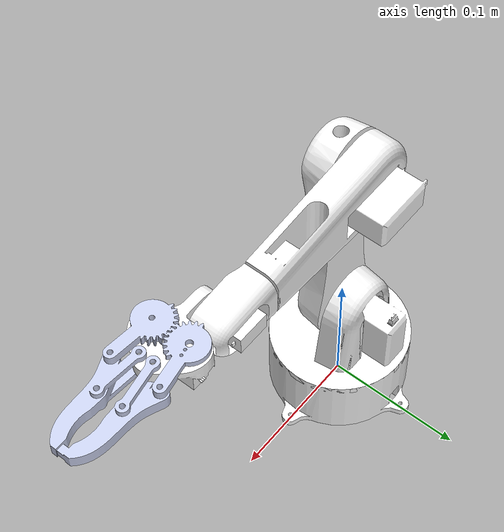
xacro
<?xml version="1.0"?>
<robot xmlns:xacro="http://www.ros.org/wiki/xacro" name="astra_arm_urdf">
    <xacro:arg name="initial_positions_file" default="initial_positions.yaml" />

    <!-- Import astra_arm_urdf urdf file -->
    <xacro:include filename="$(find astra_arm_urdf)/urdf/astra_arm_urdf.urdf" />

    <!-- Import control_xacro -->
    <xacro:include filename="astra_arm_urdf.ros2_control.xacro" />

    <xacro:astra_arm_urdf_ros2_control name="FakeSystem" initial_positions_file="$(arg initial_positions_file)"/>

</robot>

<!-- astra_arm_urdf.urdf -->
<robot
  name="astra_arm_urdf">
  <link
    name="base_link">
    <inertial>
      <origin
        xyz="-3.08444532333696E-05 0.00118382469675537 0.0391133064626048"
        rpy="0 0 0" />
      <mass
        value="0.21714940667968" />
      <inertia
        ixx="0.000199893756705658"
        ixy="9.78241783510233E-08"
        ixz="-7.79432582355636E-08"
        iyy="0.000197792028989822"
        iyz="-6.6812305798477E-06"
        izz="0.000273059596803161" />
    </inertial>
    <visual>
      <origin
        xyz="0 0 0"
        rpy="0 0 0" />
      <geometry>
        <mesh
          filename="package://astra_arm_urdf/meshes/base_link.STL" />
      </geometry>
      <material
        name="">
        <color
          rgba="1 1 1 1" />
      </material>
    </visual>
    <collision>
      <origin
        xyz="0 0 0"
        rpy="0 0 0" />
      <geometry>
        <mesh
          filename="package://astra_arm_urdf/meshes/base_link.STL" />
      </geometry>
    </collision>
  </link>
  <link
    name="shoulder_link">
    <inertial>
      <origin
        xyz="-7.50059831744476E-08 0.0125350268571897 0.0183608533773389"
        rpy="0 0 0" />
      <mass
        value="0.123597949087119" />
      <inertia
        ixx="7.65097456410541E-05"
        ixy="2.77787381058924E-10"
        ixz="6.67658494872229E-11"
        iyy="8.32883912152094E-05"
        iyz="-7.68878516719141E-06"
        izz="7.65397018405884E-05" />
    </inertial>
    <visual>
      <origin
        xyz="0 0 0"
        rpy="0 0 0" />
      <geometry>
        <mesh
          filename="package://astra_arm_urdf/meshes/shoulder_link.STL" />
      </geometry>
      <material
        name="">
        <color
          rgba="1 1 1 1" />
      </material>
    </visual>
    <collision>
      <origin
        xyz="0 0 0"
        rpy="0 0 0" />
      <geometry>
        <mesh
          filename="package://astra_arm_urdf/meshes/shoulder_link.STL" />
      </geometry>
    </collision>
  </link>
  <joint
    name="shoulder_joint"
    type="revolute">
    <origin
      xyz="0 0 0.050402"
      rpy="0 0 0" />
    <parent
      link="base_link" />
    <child
      link="shoulder_link" />
    <axis
      xyz="0 0 1" />
    <limit
      lower="-1.57"
      upper="1.57"
      effort="10.5"
      velocity="1.5" />
  </joint>
  <link
    name="upperarm_link">
    <inertial>
      <origin
        xyz="-0.000712004722758494 -0.00630711901343494 0.0699991316734497"
        rpy="0 0 0" />
      <mass
        value="0.137956897450908" />
      <inertia
        ixx="0.000412802425063209"
        ixy="-1.54156023193934E-09"
        ixz="3.8766709137467E-06"
        iyy="0.000431598972020418"
        iyz="2.53724770390078E-09"
        izz="3.08732568954117E-05" />
    </inertial>
    <visual>
      <origin
        xyz="0 0 0"
        rpy="0 0 0" />
      <geometry>
        <mesh
          filename="package://astra_arm_urdf/meshes/upperarm_link.STL" />
      </geometry>
      <material
        name="">
        <color
          rgba="1 1 1 1" />
      </material>
    </visual>
    <collision>
      <origin
        xyz="0 0 0"
        rpy="0 0 0" />
      <geometry>
        <mesh
          filename="package://astra_arm_urdf/meshes/upperarm_link.STL" />
      </geometry>
    </collision>
  </link>
  <joint
    name="upperarm_joint"
    type="revolute">
    <origin
      xyz="0 -0.004 0.03855"
      rpy="0 0 0" />
    <parent
      link="shoulder_link" />
    <child
      link="upperarm_link" />
    <axis
      xyz="0 -1 0" />
    <limit
      lower="-1.57"
      upper="1.57"
      effort="10.5"
      velocity="1.5" />
  </joint>
  <link
    name="elbow_link">
    <inertial>
      <origin
        xyz="0.0282843572655105 0.0171086319271421 4.09041417299694E-05"
        rpy="0 0 0" />
      <mass
        value="0.122761924125554" />
      <inertia
        ixx="2.77007139666344E-05"
        ixy="-5.07725389371186E-07"
        ixz="-2.2435112906729E-07"
        iyy="0.000127148823996402"
        iyz="-9.22811188708679E-09"
        izz="0.000117815411609115" />
    </inertial>
    <visual>
      <origin
        xyz="0 0 0"
        rpy="0 0 0" />
      <geometry>
        <mesh
          filename="package://astra_arm_urdf/meshes/elbow_link.STL" />
      </geometry>
      <material
        name="">
        <color
          rgba="1 1 1 1" />
      </material>
    </visual>
    <collision>
      <origin
        xyz="0 0 0"
        rpy="0 0 0" />
      <geometry>
        <mesh
          filename="package://astra_arm_urdf/meshes/elbow_link.STL" />
      </geometry>
    </collision>
  </link>
  <joint
    name="elbow_joint"
    type="revolute">
    <origin
      xyz="-0.0014208 0.004 0.13999"
      rpy="0 0 0" />
    <parent
      link="upperarm_link" />
    <child
      link="elbow_link" />
    <axis
      xyz="0 1 0" />
    <limit
      lower="-1.57"
      upper="1.57"
      effort="10.5"
      velocity="1.5" />
  </joint>
  <link
    name="wrist_link">
    <inertial>
      <origin
        xyz="0.0198135251298811 -0.00246462048019957 0.00507245140955287"
        rpy="0 0 0" />
      <mass
        value="0.0275804642723953" />
      <inertia
        ixx="3.41874740135694E-06"
        ixy="4.27967014050992E-07"
        ixz="-1.12001078956374E-08"
        iyy="6.50091950101727E-06"
        iyz="3.16684120748732E-09"
        izz="5.80153585835653E-06" />
    </inertial>
    <visual>
      <origin
        xyz="0 0 0"
        rpy="0 0 0" />
      <geometry>
        <mesh
          filename="package://astra_arm_urdf/meshes/wrist_link.STL" />
      </geometry>
      <material
        name="">
        <color
          rgba="1 1 1 1" />
      </material>
    </visual>
    <collision>
      <origin
        xyz="0 0 0"
        rpy="0 0 0" />
      <geometry>
        <mesh
          filename="package://astra_arm_urdf/meshes/wrist_link.STL" />
      </geometry>
    </collision>
  </link>
  <joint
    name="wrist_joint"
    type="revolute">
    <origin
      xyz="0.1057 0.01435 -0.0051"
      rpy="0 0 0" />
    <parent
      link="elbow_link" />
    <child
      link="wrist_link" />
    <axis
      xyz="-1 0 0" />
    <limit
      lower="-1.57"
      upper="1.57"
      effort="10.5"
      velocity="1.5" />
  </joint>
  <link
    name="extra_wrist_link">
    <inertial>
      <origin
        xyz="0.0262793912938347 0.0046418443676678 0.00206186061675029"
        rpy="0 0 0" />
      <mass
        value="0.0227046882547889" />
      <inertia
        ixx="3.29041243163955E-06"
        ixy="-5.46124141762123E-07"
        ixz="-8.30851199579705E-07"
        iyy="5.33636886986773E-06"
        iyz="-4.65500232236998E-08"
        izz="6.67442856376792E-06" />
    </inertial>
    <visual>
      <origin
        xyz="0 0 0"
        rpy="0 0 0" />
      <geometry>
        <mesh
          filename="package://astra_arm_urdf/meshes/extra_wrist_link.STL" />
      </geometry>
      <material
        name="">
        <color
          rgba="1 1 1 1" />
      </material>
    </visual>
    <collision>
      <origin
        xyz="0 0 0"
        rpy="0 0 0" />
      <geometry>
        <mesh
          filename="package://astra_arm_urdf/meshes/extra_wrist_link.STL" />
      </geometry>
    </collision>
  </link>
  <joint
    name="extra_wrist_joint"
    type="revolute">
    <origin
      xyz="0.0284 -0.01685 0.0051"
      rpy="0 0 0" />
    <parent
      link="wrist_link" />
    <child
      link="extra_wrist_link" />
    <axis
      xyz="0 1 0" />
    <limit
      lower="-1.57"
      upper="1.57"
      effort="10.5"
      velocity="1.5" />
  </joint>
  <link
    name="ee_link">
    <inertial>
      <origin
        xyz="-0.051955968606695 -0.000885887245608952 0.00254263682994083"
        rpy="0 0 0" />
      <mass
        value="0.0209019024310684" />
      <inertia
        ixx="5.38316186283137E-07"
        ixy="-2.08546966880991E-08"
        ixz="1.28457020321453E-08"
        iyy="4.69382135625053E-06"
        iyz="2.62574718208672E-09"
        izz="5.05831144269527E-06" />
    </inertial>
    <visual>
      <origin
        xyz="0 0 0"
        rpy="0 0 0" />
      <geometry>
        <mesh
          filename="package://astra_arm_urdf/meshes/ee_link.STL" />
      </geometry>
      <material
        name="">
        <color
          rgba="0.792156862745098 0.819607843137255 0.933333333333333 1" />
      </material>
    </visual>
    <collision>
      <origin
        xyz="0 0 0"
        rpy="0 0 0" />
      <geometry>
        <mesh
          filename="package://astra_arm_urdf/meshes/ee_link.STL" />
      </geometry>
    </collision>
  </link>
  <joint
    name="ee_joint"
    type="fixed">
    <origin
      xyz="0.11955 0.0032766 0.0078437"
      rpy="0 0 0" />
    <parent
      link="extra_wrist_link" />
    <child
      link="ee_link" />
    <axis
      xyz="0 0 0" />
    <limit
      lower="0.5"
      upper="0.5"
      effort="10.5"
      velocity="1.5" />
  </joint>

    <link name="ee_rotation_x"/>
  <joint name="ee_rotation_joint_x" type="revolute">
    <origin xyz="0 0 0" rpy="0 0 0"/>
    <parent link="ee_link"/>
    <child link="ee_rotation_x"/>
    <axis xyz="1 0 0"/>
    <limit lower="-3.1416" upper="3.1416" effort="1" velocity="1"/>
  </joint>

  <link name="ee_rotation_y"/>
  <joint name="ee_rotation_joint_y" type="revolute">
    <origin xyz="0 0 0" rpy="0 0 0"/>
    <parent link="ee_rotation_x"/>
    <child link="ee_rotation_y"/>
    <axis xyz="0 1 0"/>
    <limit lower="-3.1416" upper="3.1416" effort="1" velocity="1"/>
  </joint>

  <link name="robot_ee"/>
  <joint name="ee_rotation_joint_z" type="revolute">
    <origin xyz="0 0 0" rpy="0 0 0"/>
    <parent link="ee_rotation_y"/>
    <child link="robot_ee"/>
    <axis xyz="0 0 1"/>
    <limit lower="-3.1416" upper="3.1416" effort="1" velocity="1"/>
  </joint>

</robot>
